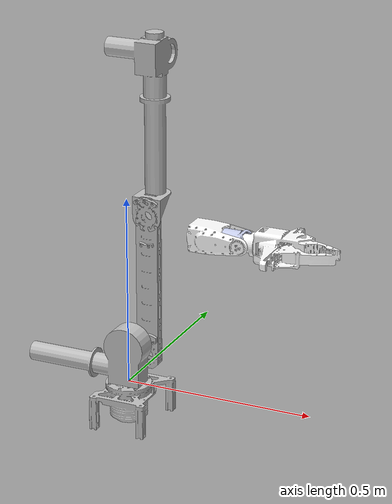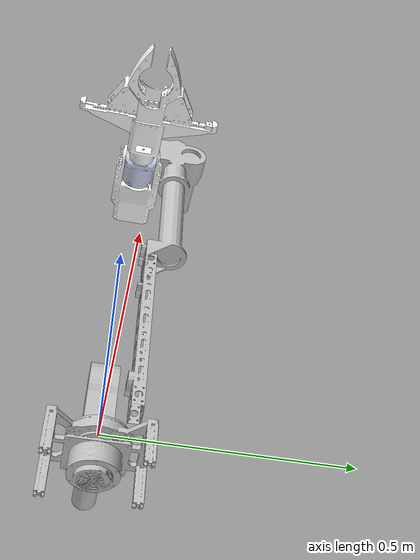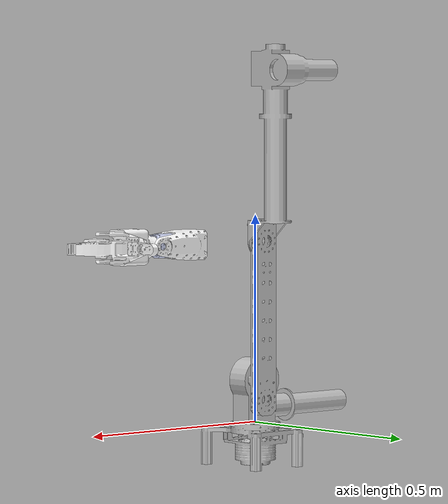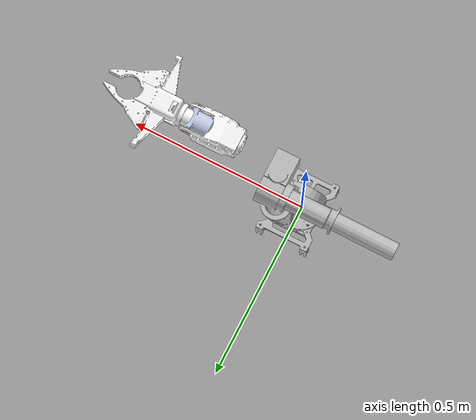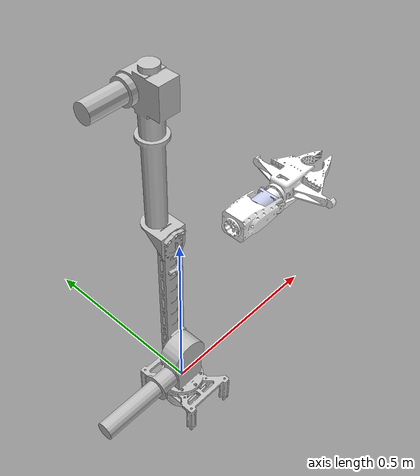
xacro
<?xml version="1.0"?>
<robot xmlns:xacro="http://www.ros.org/wiki/xacro" name="JGarm">
    <xacro:arg name="initial_positions_file" default="initial_positions.yaml" />

    <!-- Import JGarm urdf file -->
    <xacro:include filename="$(find arm_description)/urdf/JGarm.urdf" />

    <!-- Import control_xacro -->
    <xacro:include filename="JGarm.ros2_control.xacro" />

</robot>

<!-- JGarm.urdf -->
<robot
  name="JGarm">
  <link
    name="base_link">
    <visual>
      <origin
        xyz="0 0 0"
        rpy="0 0 0" />
      <geometry>
        <mesh
          filename="package://arm_description/meshes/base_link.STL" />
      </geometry>
      <material
        name="">
        <color
          rgba="0.752941176470588 0.752941176470588 0.752941176470588 1" />
      </material>
    </visual>
    <collision>
      <origin
        xyz="0 0 0"
        rpy="0 0 0" />
      <geometry>
        <mesh
          filename="package://arm_description/meshes/base_link.STL" />
      </geometry>
    </collision>
  </link>
  <link
    name="link_1">
    <inertial>
      <origin
        xyz="0.025292 -0.0021277 0.053006"
        rpy="0 0 0" />
      <mass
        value="0.60157" />
      <inertia
        ixx="0.00026656"
        ixy="1.0447E-06"
        ixz="-9.6608E-06"
        iyy="0.00051808"
        iyz="4.5373E-07"
        izz="0.00031387" />
    </inertial>
    <visual>
      <origin
        xyz="0 0 0"
        rpy="0 0 0" />
      <geometry>
        <mesh
          filename="package://arm_description/meshes/link1.STL" />
      </geometry>
      <material
        name="">
        <color
          rgba="0.75294 0.75294 0.75294 1" />
      </material>
    </visual>
    <collision>
      <origin
        xyz="0 0 0"
        rpy="0 0 0" />
      <geometry>
        <mesh
          filename="package://arm_description/meshes/link1.STL" />
      </geometry>
    </collision>
  </link>
  <joint
    name="joint_1"
    type="revolute">
    <origin
      xyz="0 0 0"
      rpy="0 0 0" />
    <parent
      link="base_link" />
    <child
      link="link_1" />
    <axis
      xyz="0 0 1" />
    <limit
      lower="-3.14"
      upper="3.14"
      effort="25"
      velocity="7.75" />
    <dynamics
      friction="0.3" />
  </joint>
  <link
    name="link_2">
    <inertial>
      <origin
        xyz="-0.00027428 0.19656 0.0094203"
        rpy="0 0 0" />
      <mass
        value="0.24857" />
      <inertia
        ixx="0.0035485"
        ixy="6.4606E-08"
        ixz="-1.1586E-08"
        iyy="0.00012764"
        iyz="2.8277E-08"
        izz="0.0036258" />
    </inertial>
    <visual>
      <origin
        xyz="0 0 0"
        rpy="0 0 0" />
      <geometry>
        <mesh
          filename="package://arm_description/meshes/link2.STL" />
      </geometry>
      <material
        name="">
        <color
          rgba="0.75294 0.75294 0.75294 1" />
      </material>
    </visual>
    <collision>
      <origin
        xyz="0 0 0"
        rpy="0 0 0" />
      <geometry>
        <mesh
          filename="package://arm_description/meshes/link2.STL" />
      </geometry>
    </collision>
  </link>
  <joint
    name="joint_2"
    type="revolute">
    <origin
      xyz="0.03 0.05 0.06"
      rpy="1.5708 0 -3.1416" />
    <parent
      link="link_1" />
    <child
      link="link_2" />
    <axis
      xyz="0 0 1" />
    <limit
      lower="-1.3265"
      upper="1.9024"
      effort="63"
      velocity="4.71" />
    <dynamics
      friction="0.5" />
  </joint>
  <link
    name="link_3">
    <inertial>
      <origin
        xyz="-0.0012755 0.043295 -0.053823"
        rpy="0 0 0" />
      <mass
        value="0.89087" />
      <inertia
        ixx="0.00055376"
        ixy="9.9607E-07"
        ixz="2.2349E-06"
        iyy="0.00043809"
        iyz="-5.2207E-06"
        izz="0.00074817" />
    </inertial>
    <visual>
      <origin
        xyz="0 0 0"
        rpy="0 0 0" />
      <geometry>
        <mesh
          filename="package://arm_description/meshes/link3.STL" />
      </geometry>
      <material
        name="">
        <color
          rgba="0.75294 0.75294 0.75294 1" />
      </material>
    </visual>
    <collision>
      <origin
        xyz="0 0 0"
        rpy="0 0 0" />
      <geometry>
        <mesh
          filename="package://arm_description/meshes/link3.STL" />
      </geometry>
    </collision>
  </link>
  <joint
    name="joint_3"
    type="revolute">
    <origin
      xyz="0 0.38 0"
      rpy="0 0 1.5708" />
    <parent
      link="link_2" />
    <child
      link="link_3" />
    <axis
      xyz="0 0 1" />
    <limit
      lower="-0.5934"
      upper="1.3265"
      effort="35"
      velocity="4.71" />
    <dynamics
      friction="0.2" />
  </joint>
  <link
    name="link_4">
    <inertial>
      <origin
        xyz="1.1848E-05 0.002584 0.055104"
        rpy="0 0 0" />
      <mass
        value="0.34032" />
      <inertia
        ixx="0.00024293"
        ixy="2.0109E-08"
        ixz="2.3583E-08"
        iyy="0.0002931"
        iyz="3.3767E-08"
        izz="0.0001102" />
    </inertial>
    <visual>
      <origin
        xyz="0 0 0"
        rpy="0 0 0" />
      <geometry>
        <mesh
          filename="package://arm_description/meshes/link4.STL" />
      </geometry>
      <material
        name="">
        <color
          rgba="1 1 1 1" />
      </material>
    </visual>
    <collision>
      <origin
        xyz="0 0 0"
        rpy="0 0 0" />
      <geometry>
        <mesh
          filename="package://arm_description/meshes/link4.STL" />
      </geometry>
    </collision>
  </link>
  <joint
    name="joint_4"
    type="revolute">
    <origin
      xyz="-0.005 0.1535 -0.05"
      rpy="-1.5708 0 0" />
    <parent
      link="link_3" />
    <child
      link="link_4" />
    <axis
      xyz="0 0 1" />
    <limit
      lower="-3.14"
      upper="3.14"
      effort="18"
      velocity="7.54" />
    <dynamics
      friction="0.2" />
  </joint>
  <link
    name="link_5">
    <inertial>
      <origin
        xyz="6.0551E-05 -0.025037 3.7661E-05"
        rpy="0 0 0" />
      <mass
        value="0.11997" />
      <inertia
        ixx="3.9963E-05"
        ixy="3.4339E-08"
        ixz="-9.6217E-10"
        iyy="5.5683E-05"
        iyz="1.916E-08"
        izz="3.4447E-05" />
    </inertial>
    <visual>
      <origin
        xyz="0 0 0"
        rpy="0 0 0" />
      <geometry>
        <mesh
          filename="package://arm_description/meshes/link5.STL" />
      </geometry>
      <material
        name="">
        <color
          rgba="0.79216 0.81961 0.93333 1" />
      </material>
    </visual>
    <collision>
      <origin
        xyz="0 0 0"
        rpy="0 0 0" />
      <geometry>
        <mesh
          filename="package://arm_description/meshes/link5.STL" />
      </geometry>
    </collision>
  </link>
  <joint
    name="joint_5"
    type="revolute">
    <origin
      xyz="0 0 0.136"
      rpy="1.5708 0 0" />
    <parent
      link="link_4" />
    <child
      link="link_5" />
    <axis
      xyz="0 0 -1" />
    <limit
      lower="-1.967"
      upper="1.937"
      effort="6"
      velocity="20" />
    <dynamics
      friction="0.2" />
  </joint>
  <link
    name="link_6">
    <inertial>
      <origin
        xyz="-3.2784E-07 0.00091477 0.067918"
        rpy="0 0 0" />
      <mass
        value="0.56394" />
      <inertia
        ixx="0.00054515"
        ixy="1.1364E-07"
        ixz="-5.2571E-10"
        iyy="0.0003323"
        iyz="-4.4562E-08"
        izz="0.00048531" />
    </inertial>
    <visual>
      <origin
        xyz="0 0 0"
        rpy="0 0 0" />
      <geometry>
        <mesh
          filename="package://arm_description/meshes/link6.STL" />
      </geometry>
      <material
        name="">
        <color
          rgba="1 1 1 1" />
      </material>
    </visual>
    <collision>
      <origin
        xyz="0 0 0"
        rpy="0 0 0" />
      <geometry>
        <mesh
          filename="package://arm_description/meshes/link6.STL" />
      </geometry>
    </collision>
  </link>
  <joint
    name="joint_6"
    type="revolute">
    <origin
      xyz="0 0.1685 0"
      rpy="1.5708 0 0" />
    <parent
      link="link_5" />
    <child
      link="link_6" />
    <axis
      xyz="0 0 -1" />
    <limit
      lower="-3.14"
      upper="3.14"
      effort="3"
      velocity="10" />
    <dynamics
      friction="0.2" />
  </joint>
</robot>
